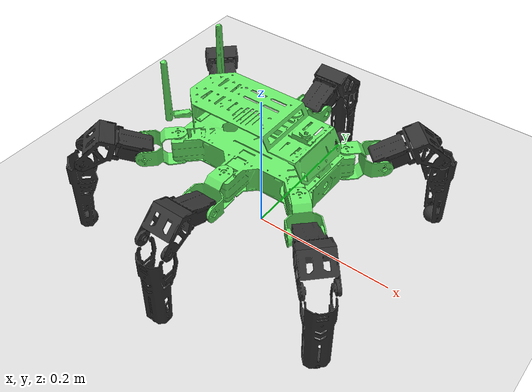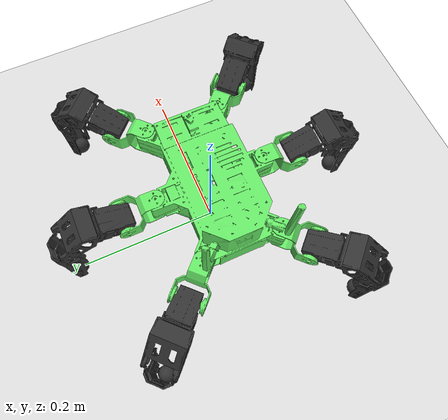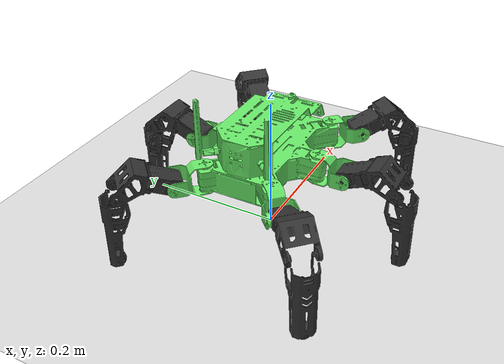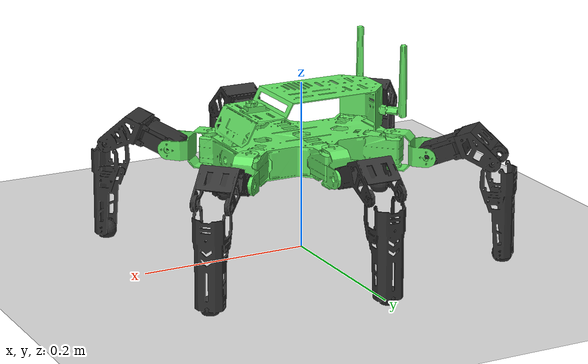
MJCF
<mujoco model="jethexa">
  <compiler angle="radian" eulerseq="xyz" />

  <asset>
    <mesh name="body_a" content_type="model/stl" file="../meshes/simplify/body_a.stl" scale="0.001 0.001 0.001" />
    <mesh name="coxa" content_type="model/stl" file="../meshes/simplify/coxa.stl" scale="0.001 0.001 0.001" />
    <mesh name="R_femur" content_type="model/stl" file="../meshes/simplify/R_femur.stl" scale="0.001 0.001 0.001" />
    <mesh name="R_tibia_b" content_type="model/stl" file="../meshes/simplify/R_tibia_b.stl" scale="0.001 0.001 0.001" />
    <mesh name="L_femur" content_type="model/stl" file="../meshes/simplify/L_femur.stl" scale="0.001 0.001 0.001" />
    <mesh name="L_tibia_b" content_type="model/stl" file="../meshes/simplify/L_tibia_b.stl" scale="0.001 0.001 0.001" />
    <mesh name="body_full" file="../meshes/simplify/body.stl" scale="0.001 0.001 0.001" />
  </asset>

  <worldbody>

    <body name="robot" pos="0 0 0.12"><freejoint name="root_free" /><inertial pos="0 0 0" quat="0.707107 0 0.707107 0" mass="1.36908" diaginertia="0.026334 0.023327 0.005842" /><geom type="mesh" rgba="0.4 0.9 0.4 1" mesh="body_full" contype="0" conaffinity="0" friction="0.6 0.01 0.002" solref="0.004 1" solimp="0.015 1 0.036" />

    <body name="coxa_RR" pos="-0.093205 -0.05098 0" quat="0.382683 0 0 -0.92388">
      <inertial pos="0 0 0" quat="0.657134 0.290235 0.635914 0.282049" mass="0.02556" diaginertia="1.38694e-05 1.38637e-05 9.68015e-06" />
      <joint name="coxa_joint_RR" pos="0 0 0" axis="0 0 -1" limited="true" range="-1.75 1.75" margin="0.02" solreflimit="0.01 1" solimplimit="0.9 0.95 0.001" damping="4.0" />
      <geom type="mesh" rgba="0.4 0.9 0.4 1" mesh="coxa" contype="0" conaffinity="0" friction="0.6 0.01 0.002" solref="0.004 1" solimp="0.015 1 0.036" />
      <body name="femur_RR" pos="0.0450503 0 0" quat="0.707107 0.707107 0 0">

        <inertial pos="0.0385 0 0" quat="0.707107 0.707107 0 0" mass="0.08807" diaginertia="2.23117e-05 7.07003e-05 6.67144e-05" />
        <joint name="femur_joint_RR" pos="0 0 0" axis="0 0 -1" limited="true" range="-1.7 2.45" margin="0.02" solreflimit="0.01 1" solimplimit="0.9 0.95 0.001" damping="4.0" />
        <geom type="mesh" rgba="0.2 0.2 0.2 1" mesh="R_femur" contype="0" conaffinity="0" friction="0.6 0.01 0.002" solref="0.004 1" solimp="0.015 1 0.036" />

        <body name="tibia_RR" pos="0.07703 0 0" quat="0.737277 0 0 -0.67559">
          <inertial pos="0.0565 0 0" quat="0.557964 0.509055 0.48547 0.440293" mass="0.08993" diaginertia="0.000121878 0.000118094 1.63464e-05" />
          <joint name="tibia_joint_RR" pos="0 0 0" axis="0 0 -1" limited="true" range="-2.4 1.2" margin="0.02" solreflimit="0.01 1" solimplimit="0.9 0.95 0.001" damping="4.0" />
          <geom size="0.012" pos="0.113 0 0" rgba="0.2 0.2 0.2 1" name="foot_RR" priority="1" condim="3" margin="0.003" friction="0.8 0 0" solref="0.012 1.4" solimp="0.03 1 0.045" />

          <geom pos="0 0 0" quat="0.999048 0 0 -0.0436212" type="mesh" rgba="0.2 0.2 0.2 1" mesh="R_tibia_b" contype="0" conaffinity="0" friction="0.6 0.01 0.002" solref="0.004 1" solimp="0.015 1 0.036" />
        </body>
      </body>
    </body>
    <body name="coxa_RM" pos="0 -0.073535 0" quat="0.707107 0 0 -0.707107">
      <inertial pos="0 0 0" quat="0.657134 0.290235 0.635914 0.282049" mass="0.02556" diaginertia="1.38694e-05 1.38637e-05 9.68015e-06" />
      <joint name="coxa_joint_RM" pos="0 0 0" axis="0 0 -1" limited="true" range="-1.75 1.75" margin="0.02" solreflimit="0.01 1" solimplimit="0.9 0.95 0.001" damping="4.0" />
      <geom type="mesh" rgba="0.4 0.9 0.4 1" mesh="coxa" contype="0" conaffinity="0" friction="0.6 0.01 0.002" solref="0.004 1" solimp="0.015 1 0.036" />
      <body name="femur_RM" pos="0.0450503 0 0" quat="0.707107 0.707107 0 0">
        <inertial pos="0.0385 0 0" quat="0.707107 0.707107 0 0" mass="0.08807" diaginertia="2.23117e-05 7.07003e-05 6.67144e-05" />
        <joint name="femur_joint_RM" pos="0 0 0" axis="0 0 -1" limited="true" range="-1.7 2.45" margin="0.02" solreflimit="0.01 1" solimplimit="0.9 0.95 0.001" damping="4.0" />
        <geom type="mesh" rgba="0.2 0.2 0.2 1" mesh="R_femur" contype="0" conaffinity="0" friction="0.6 0.01 0.002" solref="0.004 1" solimp="0.015 1 0.036" />
        <body name="tibia_RM" pos="0.07703 0 0" quat="0.737277 0 0 -0.67559">
          <inertial pos="0.0565 0 0" quat="0.557964 0.509055 0.48547 0.440293" mass="0.08993" diaginertia="0.000121878 0.000118094 1.63464e-05" />
          <joint name="tibia_joint_RM" pos="0 0 0" axis="0 0 -1" limited="true" range="-2.4 1.2" margin="0.02" solreflimit="0.01 1" solimplimit="0.9 0.95 0.001" damping="4.0" />
          <geom size="0.012" pos="0.113 0 0" rgba="0.2 0.2 0.2 1" name="foot_RM" priority="1" condim="3" margin="0.003" friction="0.8 0 0" solref="0.012 1.4" solimp="0.03 1 0.045" />
          <geom pos="0 0 0" quat="0.999048 0 0 -0.0436212" type="mesh" rgba="0.2 0.2 0.2 1" mesh="R_tibia_b" contype="0" conaffinity="0" friction="0.6 0.01 0.002" solref="0.004 1" solimp="0.015 1 0.036" />
        </body>
      </body>
    </body>
    <body name="coxa_RF" pos="0.093205 -0.05098 0" quat="0.92388 0 0 -0.382683">
      <inertial pos="0 0 0" quat="0.657134 0.290235 0.635914 0.282049" mass="0.02556" diaginertia="1.38694e-05 1.38637e-05 9.68015e-06" />
      <joint name="coxa_joint_RF" pos="0 0 0" axis="0 0 -1" limited="true" range="-1.75 1.75" margin="0.02" solreflimit="0.01 1" solimplimit="0.9 0.95 0.001" damping="4.0" />
      <geom type="mesh" rgba="0.4 0.9 0.4 1" mesh="coxa" contype="0" conaffinity="0" friction="0.6 0.01 0.002" solref="0.004 1" solimp="0.015 1 0.036" />
      <body name="femur_RF" pos="0.0450503 0 0" quat="0.707107 0.707107 0 0">
        <inertial pos="0.0385 0 0" quat="0.707107 0.707107 0 0" mass="0.08807" diaginertia="2.23117e-05 7.07003e-05 6.67144e-05" />
        <joint name="femur_joint_RF" pos="0 0 0" axis="0 0 -1" limited="true" range="-1.7 2.45" margin="0.02" solreflimit="0.01 1" solimplimit="0.9 0.95 0.001" damping="4.0" />
        <geom type="mesh" rgba="0.2 0.2 0.2 1" mesh="R_femur" contype="0" conaffinity="0" friction="0.6 0.01 0.002" solref="0.004 1" solimp="0.015 1 0.036" />
        <body name="tibia_RF" pos="0.07703 0 0" quat="0.737277 0 0 -0.67559">
          <inertial pos="0.0565 0 0" quat="0.557964 0.509055 0.48547 0.440293" mass="0.08993" diaginertia="0.000121878 0.000118094 1.63464e-05" />
          <joint name="tibia_joint_RF" pos="0 0 0" axis="0 0 -1" limited="true" range="-2.4 1.2" margin="0.02" solreflimit="0.01 1" solimplimit="0.9 0.95 0.001" damping="4.0" />
          <geom size="0.012" pos="0.113 0 0" rgba="0.2 0.2 0.2 1" name="foot_RF" priority="1" condim="3" margin="0.003" friction="0.8 0 0" solref="0.012 1.4" solimp="0.03 1 0.045" />
          <geom pos="0 0 0" quat="0.999048 0 0 -0.0436212" type="mesh" rgba="0.2 0.2 0.2 1" mesh="R_tibia_b" contype="0" conaffinity="0" friction="0.6 0.01 0.002" solref="0.004 1" solimp="0.015 1 0.036" />
        </body>
      </body>
    </body>
    <body name="coxa_LR" pos="-0.093205 0.05098 0" quat="0.382683 0 0 0.92388">
      <inertial pos="0 0 0" quat="0.657134 0.290235 0.635914 0.282049" mass="0.02556" diaginertia="1.38694e-05 1.38637e-05 9.68015e-06" />
      <joint name="coxa_joint_LR" pos="0 0 0" axis="0 0 1" limited="true" range="-1.75 1.75" margin="0.02" solreflimit="0.01 1" solimplimit="0.9 0.95 0.001" damping="4.0" />
      <geom type="mesh" rgba="0.4 0.9 0.4 1" mesh="coxa" contype="0" conaffinity="0" friction="0.6 0.01 0.002" solref="0.004 1" solimp="0.015 1 0.036" />
      <body name="femur_LR" pos="0.0450503 0 0" quat="0.707107 -0.707107 0 0">
        <inertial pos="0.0385 0 0" quat="0.707107 0.707107 0 0" mass="0.08807" diaginertia="2.23117e-05 7.07003e-05 6.67144e-05" />
        <joint name="femur_joint_LR" pos="0 0 0" axis="0 0 1" limited="true" range="-1.7 2.45" margin="0.02" solreflimit="0.01 1" solimplimit="0.9 0.95 0.001" damping="4.0" />
        <geom type="mesh" rgba="0.2 0.2 0.2 1" mesh="L_femur" contype="0" conaffinity="0" friction="0.6 0.01 0.002" solref="0.004 1" solimp="0.015 1 0.036" />
        <body name="tibia_LR" pos="0.07703 0 0" quat="0.737277 0 0 0.67559">
          <inertial pos="0.0565 0 0" quat="0.557964 0.509055 0.48547 0.440293" mass="0.08993" diaginertia="0.000121878 0.000118094 1.63464e-05" />
          <joint name="tibia_joint_LR" pos="0 0 0" axis="0 0 1" limited="true" range="-2.4 1.2" margin="0.02" solreflimit="0.01 1" solimplimit="0.9 0.95 0.001" damping="4.0" />
          <geom size="0.012" pos="0.113 0 0" rgba="0.2 0.2 0.2 1" name="foot_LR" priority="1" condim="3" margin="0.003" friction="0.8 0 0" solref="0.012 1.4" solimp="0.03 1 0.045" />
          <geom pos="0 0 0" quat="0.999048 0 0 0.0436212" type="mesh" rgba="0.2 0.2 0.2 1" mesh="L_tibia_b" contype="0" conaffinity="0" friction="0.6 0.01 0.002" solref="0.004 1" solimp="0.015 1 0.036" />
        </body>
      </body>
    </body>
    <body name="coxa_LM" pos="0 0.07353 0" quat="0.707107 0 0 0.707107">
      <inertial pos="0 0 0" quat="0.657134 0.290235 0.635914 0.282049" mass="0.02556" diaginertia="1.38694e-05 1.38637e-05 9.68015e-06" />
      <joint name="coxa_joint_LM" pos="0 0 0" axis="0 0 1" limited="true" range="-1.75 1.75" margin="0.02" solreflimit="0.01 1" solimplimit="0.9 0.95 0.001" damping="4.0" />
      <geom type="mesh" rgba="0.4 0.9 0.4 1" mesh="coxa" contype="0" conaffinity="0" friction="0.6 0.01 0.002" solref="0.004 1" solimp="0.015 1 0.036" />
      <body name="femur_LM" pos="0.0450503 0 0" quat="0.707107 -0.707107 0 0">
        <inertial pos="0.0385 0 0" quat="0.707107 0.707107 0 0" mass="0.08807" diaginertia="2.23117e-05 7.07003e-05 6.67144e-05" />
        <joint name="femur_joint_LM" pos="0 0 0" axis="0 0 1" limited="true" range="-1.7 2.45" margin="0.02" solreflimit="0.01 1" solimplimit="0.9 0.95 0.001" damping="4.0" />
        <geom type="mesh" rgba="0.2 0.2 0.2 1" mesh="L_femur" contype="0" conaffinity="0" friction="0.6 0.01 0.002" solref="0.004 1" solimp="0.015 1 0.036" />
        <body name="tibia_LM" pos="0.07703 0 0" quat="0.737277 0 0 0.67559">
          <inertial pos="0.0565 0 0" quat="0.557964 0.509055 0.48547 0.440293" mass="0.08993" diaginertia="0.000121878 0.000118094 1.63464e-05" />
          <joint name="tibia_joint_LM" pos="0 0 0" axis="0 0 1" limited="true" range="-2.4 1.2" margin="0.02" solreflimit="0.01 1" solimplimit="0.9 0.95 0.001" damping="4.0" />
          <geom size="0.012" pos="0.113 0 0" rgba="0.2 0.2 0.2 1" name="foot_LM" priority="1" condim="3" margin="0.003" friction="0.8 0 0" solref="0.012 1.4" solimp="0.03 1 0.045" />
          <geom pos="0 0 0" quat="0.999048 0 0 0.0436212" type="mesh" rgba="0.2 0.2 0.2 1" mesh="L_tibia_b" contype="0" conaffinity="0" friction="0.6 0.01 0.002" solref="0.004 1" solimp="0.015 1 0.036" />
        </body>
      </body>
    </body>
    <body name="coxa_LF" pos="0.093205 0.05098 0" quat="0.92388 0 0 0.382683">
      <inertial pos="0 0 0" quat="0.657134 0.290235 0.635914 0.282049" mass="0.02556" diaginertia="1.38694e-05 1.38637e-05 9.68015e-06" />
      <joint name="coxa_joint_LF" pos="0 0 0" axis="0 0 1" limited="true" range="-1.75 1.75" margin="0.02" solreflimit="0.01 1" solimplimit="0.9 0.95 0.001" damping="4.0" />
      <geom type="mesh" rgba="0.4 0.9 0.4 1" mesh="coxa" contype="0" conaffinity="0" friction="0.6 0.01 0.002" solref="0.004 1" solimp="0.015 1 0.036" />
      <body name="femur_LF" pos="0.0450503 0 0" quat="0.707107 -0.707107 0 0">
        <inertial pos="0.0385 0 0" quat="0.707107 0.707107 0 0" mass="0.08807" diaginertia="2.23117e-05 7.07003e-05 6.67144e-05" />
        <joint name="femur_joint_LF" pos="0 0 0" axis="0 0 1" limited="true" range="-1.7 2.45" margin="0.02" solreflimit="0.01 1" solimplimit="0.9 0.95 0.001" damping="4.0" />
        <geom type="mesh" rgba="0.2 0.2 0.2 1" mesh="L_femur" contype="0" conaffinity="0" friction="0.6 0.01 0.002" solref="0.004 1" solimp="0.015 1 0.036" />
        <body name="tibia_LF" pos="0.07703 0 0" quat="0.737277 0 0 0.67559">
          <inertial pos="0.0565 0 0" quat="0.557964 0.509055 0.48547 0.440293" mass="0.08993" diaginertia="0.000121878 0.000118094 1.63464e-05" />
          <joint name="tibia_joint_LF" pos="0 0 0" axis="0 0 1" limited="true" range="-2.4 1.2" margin="0.02" solreflimit="0.01 1" solimplimit="0.9 0.95 0.001" damping="4.0" />
          <geom size="0.012" pos="0.113 0 0" rgba="0.2 0.2 0.2 1" name="foot_LF" priority="1" condim="3" margin="0.003" friction="0.8 0 0" solref="0.012 1.4" solimp="0.03 1 0.045" />
          <geom pos="0 0 0" quat="0.999048 0 0 0.0436212" type="mesh" rgba="0.2 0.2 0.2 1" mesh="L_tibia_b" contype="0" conaffinity="0" friction="0.6 0.01 0.002" solref="0.004 1" solimp="0.015 1 0.036" />
        </body>
      </body>
    </body>
  </body>

  <!-- Ground changed from finite box to infinite plane at z=0 to prevent early-ramp tunneling.
       Friction/solref/solimp retained; foot↔ground pairs below remain unchanged. -->
  <geom name="ground" type="plane" pos="0 0 0" size="0 0 1" rgba="0.85 0.85 0.85 1" friction="0.8 0 0" solref="0.012 1.4" solimp="0.03 1 0.045" />
  </worldbody>

  <contact>
    <exclude body1="coxa_RR" body2="femur_RR" />
    <exclude body1="coxa_RM" body2="femur_RM" />
    <exclude body1="coxa_RF" body2="femur_RF" />
    <exclude body1="coxa_LR" body2="femur_LR" />
    <exclude body1="coxa_LM" body2="femur_LM" />
    <exclude body1="coxa_LF" body2="femur_LF" />
    <exclude body1="femur_RR" body2="tibia_RR" />
    <exclude body1="femur_RM" body2="tibia_RM" />
    <exclude body1="femur_RF" body2="tibia_RF" />
    <exclude body1="femur_LR" body2="tibia_LR" />
    <exclude body1="femur_LM" body2="tibia_LM" />
    <exclude body1="femur_LF" body2="tibia_LF" />
    <pair geom1="foot_LF" geom2="ground"
          condim="6" margin="0.0018"
          friction="0.95 0.012 0.00050"
          solref="0.010 1.6"
          solimp="0.95 0.995 0.003 0.5 2" />
    <pair geom1="foot_LM" geom2="ground"
          condim="6" margin="0.0018"
          friction="0.95 0.012 0.00050"
          solref="0.010 1.6"
          solimp="0.95 0.995 0.003 0.5 2" />
    <pair geom1="foot_LR" geom2="ground"
          condim="6" margin="0.0018"
          friction="0.95 0.012 0.00050"
          solref="0.010 1.6"
          solimp="0.95 0.995 0.003 0.5 2" />
    <pair geom1="foot_RF" geom2="ground"
          condim="6" margin="0.0018"
          friction="0.95 0.012 0.00050"
          solref="0.010 1.6"
          solimp="0.95 0.995 0.003 0.5 2" />
    <pair geom1="foot_RM" geom2="ground"
          condim="6" margin="0.0018"
          friction="0.95 0.012 0.00050"
          solref="0.010 1.6"
          solimp="0.95 0.995 0.003 0.5 2" />
    <pair geom1="foot_RR" geom2="ground"
          condim="6" margin="0.0018"
          friction="0.95 0.012 0.00050"
          solref="0.010 1.6"
          solimp="0.95 0.995 0.003 0.5 2" />
  </contact>

  <option timestep="0.002" cone="elliptic" integrator="implicitfast" iterations="200" ls_iterations="50" impratio="6" />
  <actuator>
    <position name="pos_coxa_joint_LF" joint="coxa_joint_LF" kp="50.0" kv="8.0" ctrlrange="-1.75 1.75" forcerange="-2.5 2.5" />
    <position name="pos_coxa_joint_LM" joint="coxa_joint_LM" kp="50.0" kv="8.0" ctrlrange="-1.75 1.75" forcerange="-2.5 2.5" />
    <position name="pos_coxa_joint_LR" joint="coxa_joint_LR" kp="50.0" kv="8.0" ctrlrange="-1.75 1.75" forcerange="-2.5 2.5" />
    <position name="pos_coxa_joint_RF" joint="coxa_joint_RF" kp="50.0" kv="8.0" ctrlrange="-1.75 1.75" forcerange="-2.5 2.5" />
    <position name="pos_coxa_joint_RM" joint="coxa_joint_RM" kp="50.0" kv="8.0" ctrlrange="-1.75 1.75" forcerange="-2.5 2.5" />
    <position name="pos_coxa_joint_RR" joint="coxa_joint_RR" kp="50.0" kv="8.0" ctrlrange="-1.75 1.75" forcerange="-2.5 2.5" />
    <position name="pos_femur_joint_LF" joint="femur_joint_LF" kp="200.0" kv="18.0" ctrlrange="-1.7 2.45" forcerange="-3.0 3.0" />
    <position name="pos_femur_joint_LM" joint="femur_joint_LM" kp="200.0" kv="18.0" ctrlrange="-1.7 2.45" forcerange="-3.0 3.0" />
    <position name="pos_femur_joint_LR" joint="femur_joint_LR" kp="200.0" kv="18.0" ctrlrange="-1.7 2.45" forcerange="-3.0 3.0" />
    <position name="pos_femur_joint_RF" joint="femur_joint_RF" kp="200.0" kv="18.0" ctrlrange="-1.7 2.45" forcerange="-3.0 3.0" />
    <position name="pos_femur_joint_RM" joint="femur_joint_RM" kp="200.0" kv="18.0" ctrlrange="-1.7 2.45" forcerange="-3.0 3.0" />
    <position name="pos_femur_joint_RR" joint="femur_joint_RR" kp="200.0" kv="18.0" ctrlrange="-1.7 2.45" forcerange="-3.0 3.0" />
    <position name="pos_tibia_joint_LF" joint="tibia_joint_LF" kp="200.0" kv="18.0" ctrlrange="-2.4 1.2" forcerange="-3.0 3.0" />
    <position name="pos_tibia_joint_LM" joint="tibia_joint_LM" kp="200.0" kv="18.0" ctrlrange="-2.4 1.2" forcerange="-3.0 3.0" />
    <position name="pos_tibia_joint_LR" joint="tibia_joint_LR" kp="200.0" kv="18.0" ctrlrange="-2.4 1.2" forcerange="-3.0 3.0" />
    <position name="pos_tibia_joint_RF" joint="tibia_joint_RF" kp="200.0" kv="18.0" ctrlrange="-2.4 1.2" forcerange="-3.0 3.0" />
    <position name="pos_tibia_joint_RM" joint="tibia_joint_RM" kp="200.0" kv="18.0" ctrlrange="-2.4 1.2" forcerange="-3.0 3.0" />
    <position name="pos_tibia_joint_RR" joint="tibia_joint_RR" kp="200.0" kv="18.0" ctrlrange="-2.4 1.2" forcerange="-3.0 3.0" />
  </actuator>
</mujoco>
